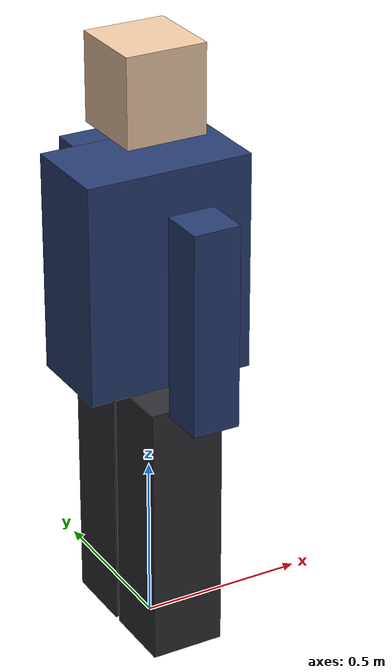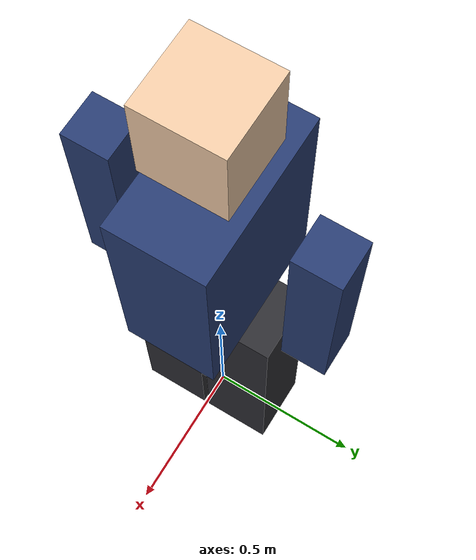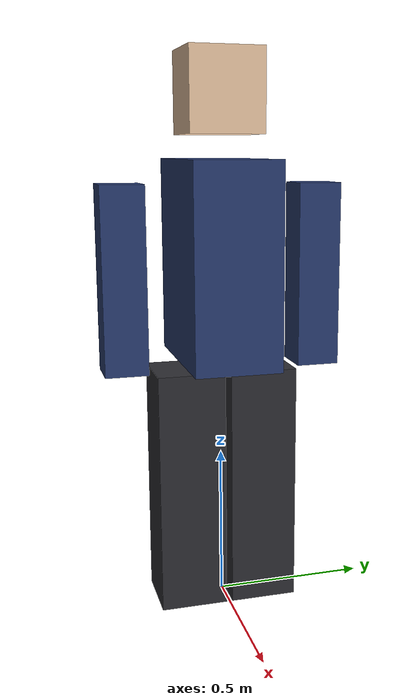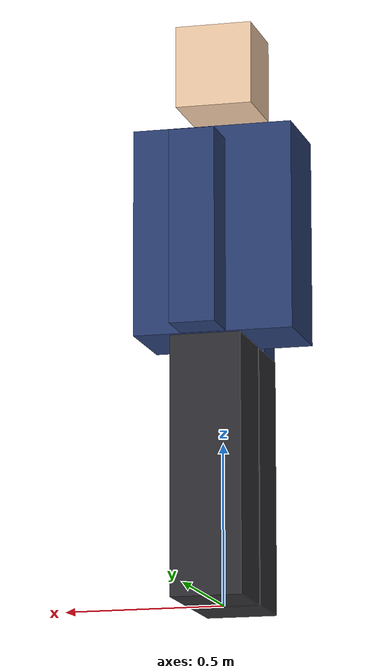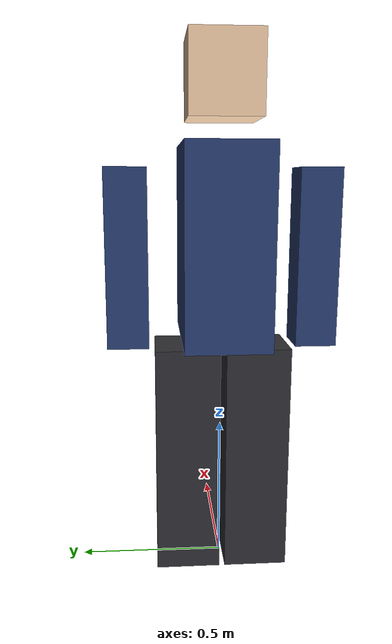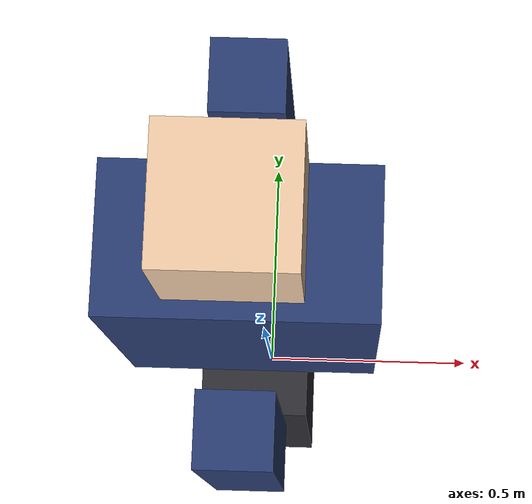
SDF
<?xml version="1.0" ?>
<sdf version="1.9">
  <model name="pedestrian">
    <static>true</static>
    <link name="link">

      <!-- Ноги -->
      <visual name="leg_left_visual">
        <pose>0 0.12 0.4 0 0 0</pose>
        <geometry><box><size>0.22 0.22 0.8</size></box></geometry>
        <material>
          <ambient>0.10 0.10 0.12 1</ambient>
          <diffuse>0.18 0.18 0.20 1</diffuse>
        </material>
      </visual>
      <visual name="leg_right_visual">
        <pose>0 -0.12 0.4 0 0 0</pose>
        <geometry><box><size>0.22 0.22 0.8</size></box></geometry>
        <material>
          <ambient>0.10 0.10 0.12 1</ambient>
          <diffuse>0.18 0.18 0.20 1</diffuse>
        </material>
      </visual>

      <!-- Туловище -->
      <visual name="torso_visual">
        <pose>0 0 1.15 0 0 0</pose>
        <geometry><box><size>0.5 0.28 0.65</size></box></geometry>
        <material>
          <ambient>0.08 0.12 0.25 1</ambient>
          <diffuse>0.16 0.24 0.45 1</diffuse>
        </material>
      </visual>

      <!-- Руки -->
      <visual name="arm_left_visual">
        <pose>0 0.32 1.1 0 0 0</pose>
        <geometry><box><size>0.14 0.14 0.6</size></box></geometry>
        <material>
          <ambient>0.08 0.12 0.25 1</ambient>
          <diffuse>0.16 0.24 0.45 1</diffuse>
        </material>
      </visual>
      <visual name="arm_right_visual">
        <pose>0 -0.32 1.1 0 0 0</pose>
        <geometry><box><size>0.14 0.14 0.6</size></box></geometry>
        <material>
          <ambient>0.08 0.12 0.25 1</ambient>
          <diffuse>0.16 0.24 0.45 1</diffuse>
        </material>
      </visual>

      <!-- Голова (телесный цвет) -->
      <visual name="head_visual">
        <pose>0 0 1.68 0 0 0</pose>
        <geometry><box><size>0.24 0.24 0.26</size></box></geometry>
        <material>
          <ambient>0.85 0.70 0.58 1</ambient>
          <diffuse>0.95 0.80 0.66 1</diffuse>
        </material>
      </visual>

      <!-- Общий collision (для depth-камеры target_localizer) -->
      <collision name="collision">
        <pose>0 0 0.9 0 0 0</pose>
        <geometry><box><size>0.6 0.8 1.8</size></box></geometry>
      </collision>

    </link>
  </model>
</sdf>
